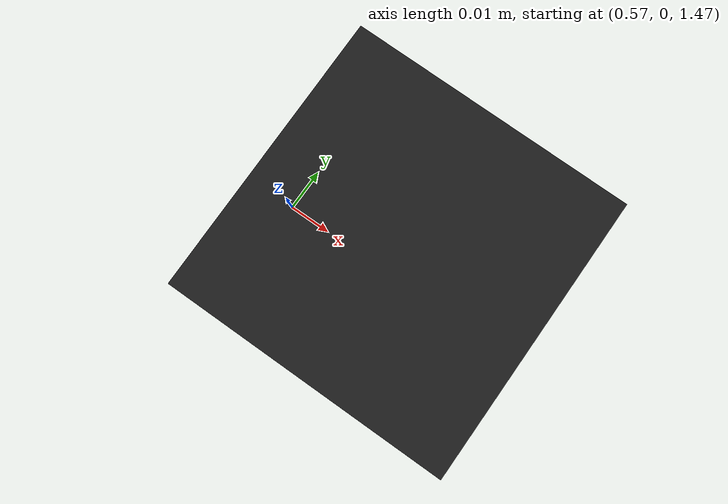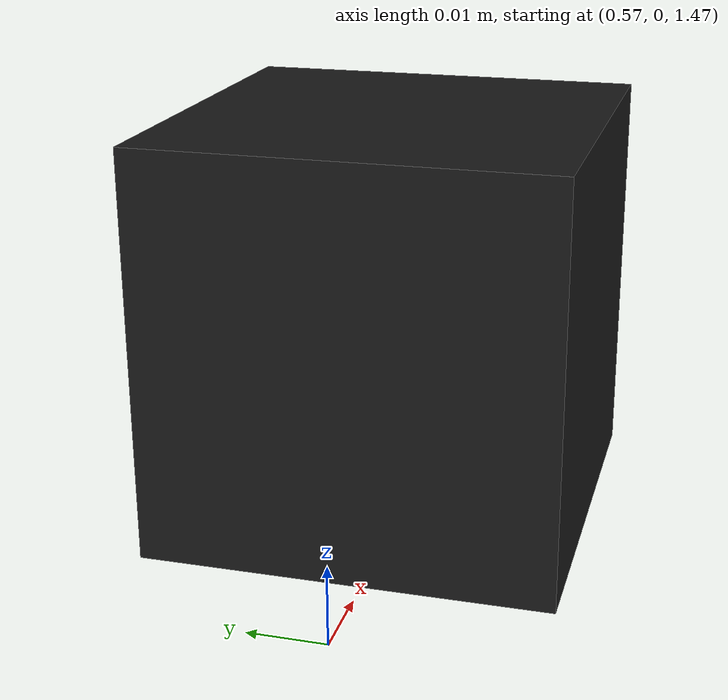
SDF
<?xml version="1.0" ?>
<sdf version="1.10">
  <world name="conveyor_world">

    <physics name="1ms" type="ignored">
      <max_step_size>0.001</max_step_size>
      <real_time_factor>1.0</real_time_factor>
    </physics>

    <plugin filename="gz-sim-physics-system"
            name="gz::sim::systems::Physics"/>
    <plugin filename="gz-sim-user-commands-system"
            name="gz::sim::systems::UserCommands"/>
    <plugin filename="gz-sim-scene-broadcaster-system"
            name="gz::sim::systems::SceneBroadcaster"/>
    <plugin filename="gz-sim-sensors-system"
            name="gz::sim::systems::Sensors">
      <render_engine>ogre2</render_engine>
    </plugin>

    <gravity>0 0 -9.81</gravity>

    <light type="directional" name="sun">
      <cast_shadows>true</cast_shadows>
      <pose>0 0 10 0 0 0</pose>
      <diffuse>1 1 1 1</diffuse>
      <specular>0.5 0.5 0.5 1</specular>
      <direction>-0.3 0.2 -1</direction>
    </light>

    <model name="ground_plane">
      <static>true</static>
      <link name="link">
        <collision name="collision">
          <geometry>
            <plane><normal>0 0 1</normal><size>50 50</size></plane>
          </geometry>
        </collision>
        <visual name="visual">
          <geometry>
            <plane><normal>0 0 1</normal><size>50 50</size></plane>
          </geometry>
          <material>
            <ambient>0.8 0.8 0.8 1</ambient>
            <diffuse>0.8 0.8 0.8 1</diffuse>
          </material>
        </visual>
      </link>
    </model>

    <!-- Conveyor belt: a static slab. The ConveyorBelt plugin drives any
         object resting on the "belt" link toward +X of the belt frame. -->
    <model name="conveyor">
      <static>true</static>
      <pose>0 0 0.5 0 0 0</pose>
      <link name="belt">
        <collision name="collision">
          <geometry>
            <box><size>2.0 0.5 0.1</size></box>
          </geometry>
          <surface>
            <friction>
              <ode><mu>1.0</mu><mu2>1.0</mu2></ode>
            </friction>
          </surface>
        </collision>
        <visual name="visual">
          <geometry>
            <box><size>2.0 0.5 0.1</size></box>
          </geometry>
          <material>
            <ambient>0.15 0.15 0.15 1</ambient>
            <diffuse>0.2 0.2 0.2 1</diffuse>
          </material>
        </visual>
      </link>

      <plugin filename="ConveyorBelt" name="conveyor_belt::ConveyorBelt">
        <belt_link>belt</belt_link>
        <velocity>0.3</velocity>
        <length>2.0</length>
        <width>0.5</width>
        <height>0.3</height>
      </plugin>
    </model>

    <model name="camera">
      <static>true</static>
      <pose>0.6 0 1.5 0 1.5708 0</pose>
      <link name="link">
        <visual name="visual">
          <geometry><box><size>0.05 0.05 0.05</size></box></geometry>
          <material><diffuse>0.1 0.1 0.1 1</diffuse></material>
        </visual>
        <sensor name="camera" type="camera">
          <topic>camera</topic>
          <update_rate>15</update_rate>
          <always_on>true</always_on>
          <visualize>true</visualize>
          <camera>
            <horizontal_fov>1.047</horizontal_fov>
            <image>
              <width>640</width>
              <height>480</height>
              <format>R8G8B8</format>
            </image>
            <clip><near>0.1</near><far>10.0</far></clip>
          </camera>
        </sensor>
      </link>
    </model>

  </world>
</sdf>
